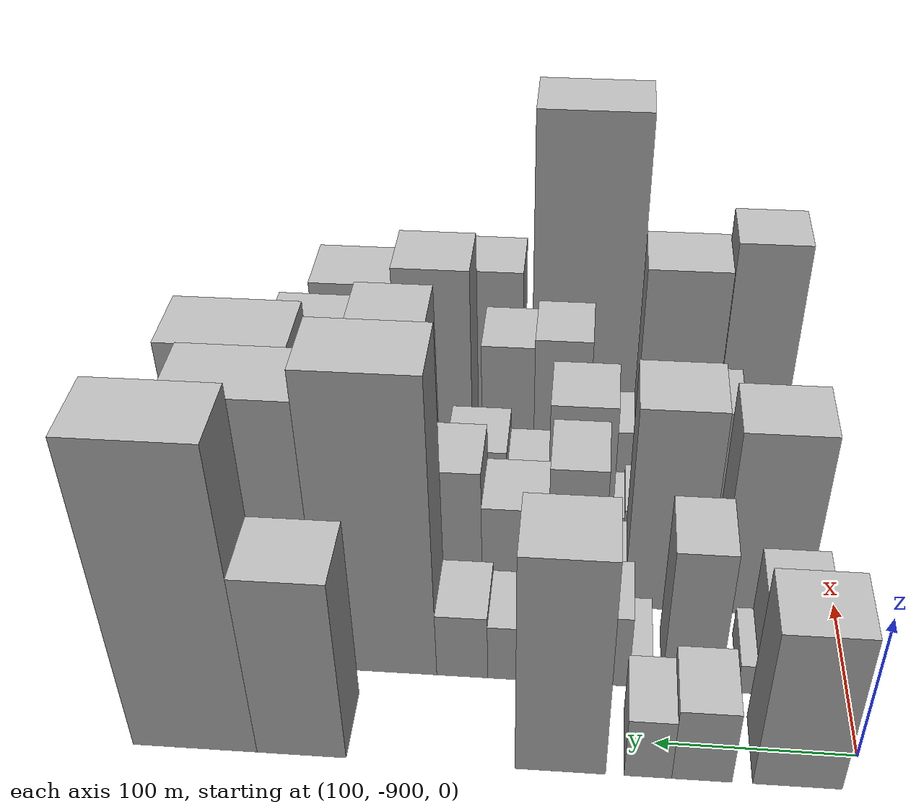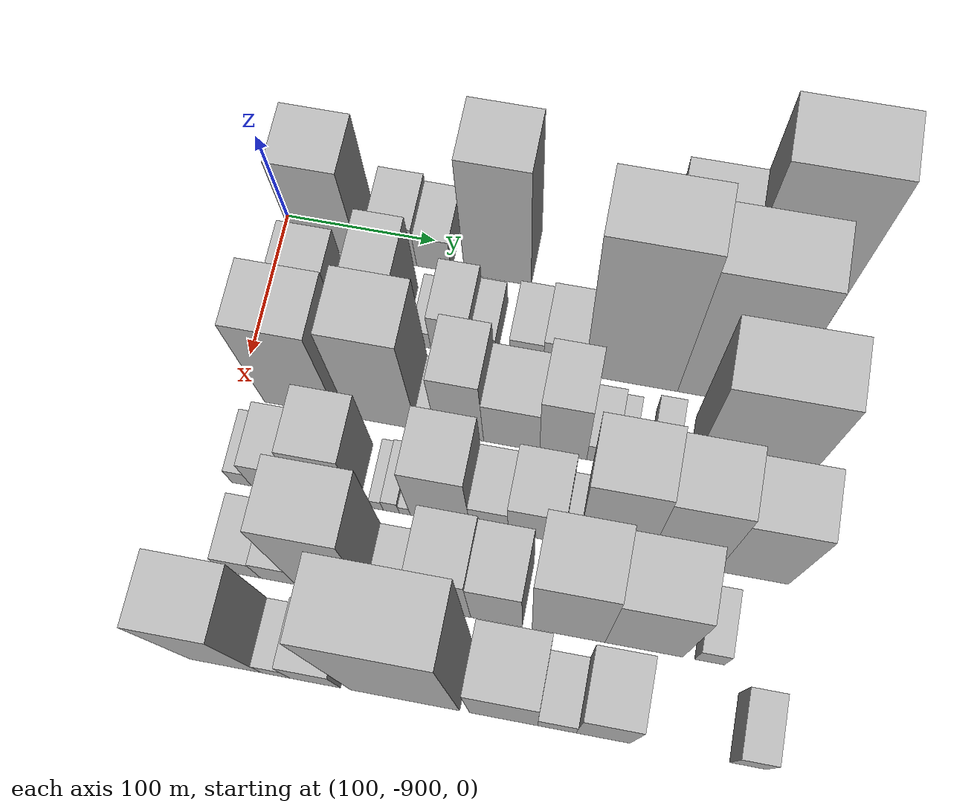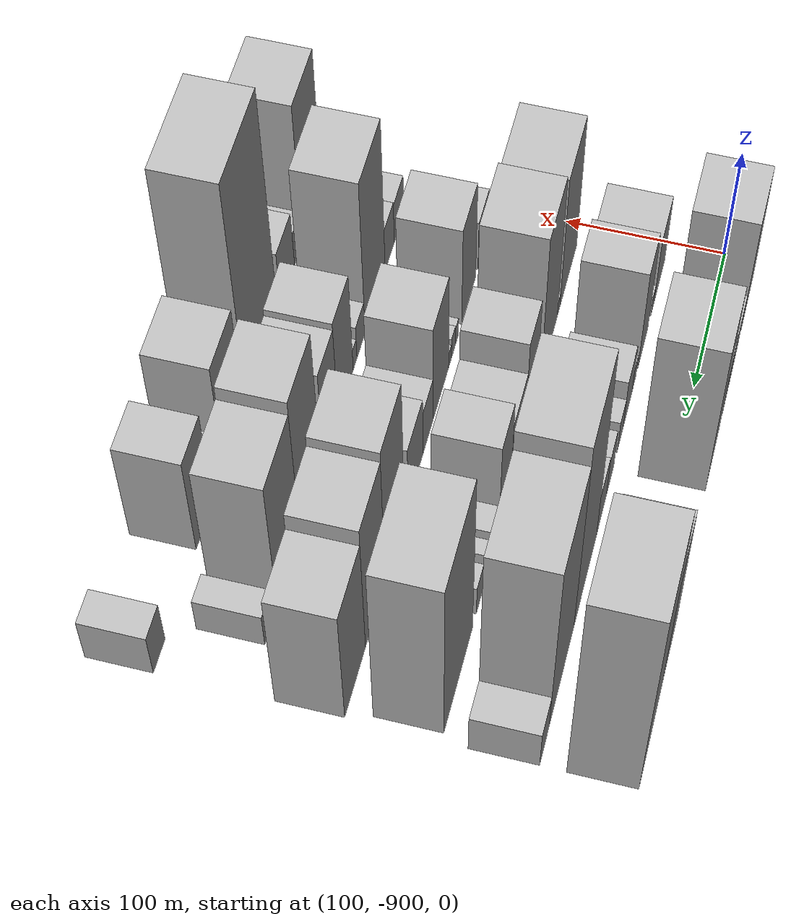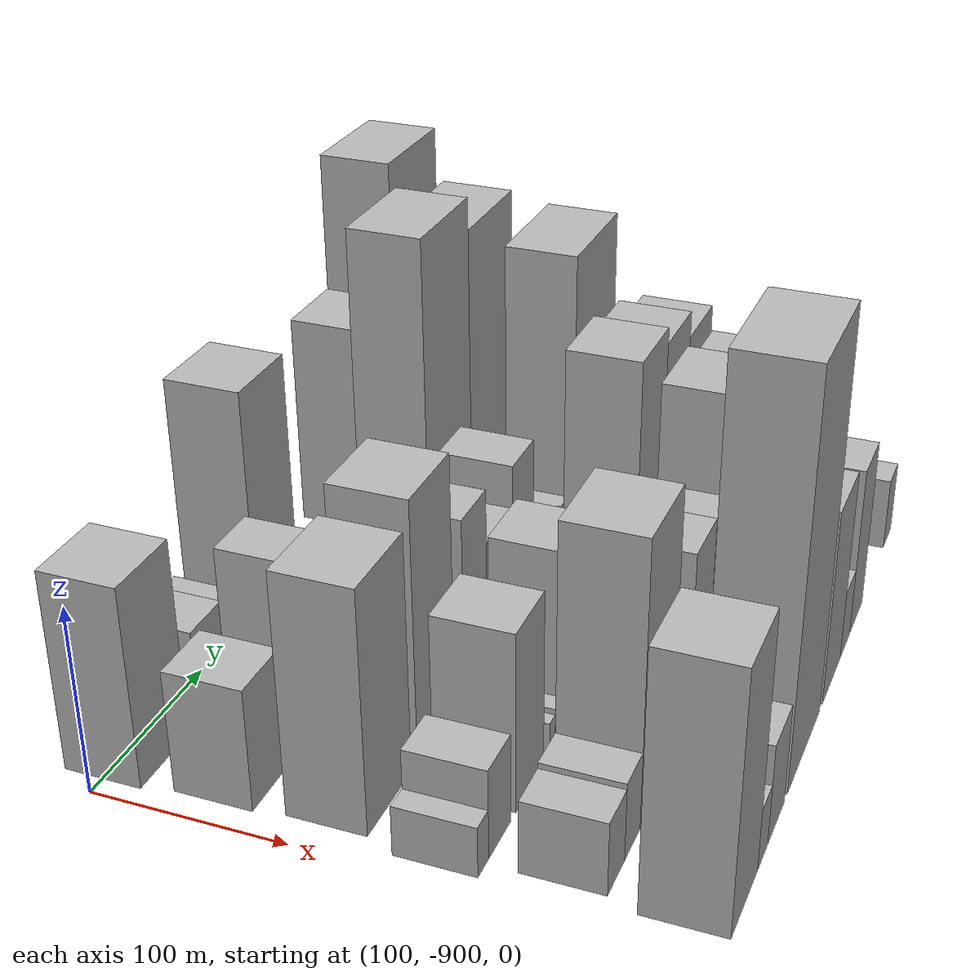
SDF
<sdf version="1.6">
 <world name="default">
  <model name="building_1">
   <static>1</static>
   <pose>100.0000 -868.5117 0 0.000000 0.000000 0.000000</pose>
   <link name="link">
    <pose>0 0 54.00 0 0 0</pose>
    <collision name="collision"><geometry><box><size>40.0000 42.9765 108.0000</size></box></geometry></collision>
    <visual name="visual">
     <cast_shadows>0</cast_shadows>
     <geometry><box><size>40.0000 42.9765 108.0000</size></box></geometry>
     <material>
      <script>
       <uri>model://HANNAS_wall/materials/scripts</uri>
       <uri>model://HANNAS_wall/materials/textures</uri>
       <name>vrc/HANNAS_wall</name>
      </script>
     </material>
    </visual>
   </link>
  </model>
  <model name="building_2">
   <static>1</static>
   <pose>100.0000 -822.4610 0 0.000000 0.000000 0.000000</pose>
   <link name="link">
    <pose>0 0 25.50 0 0 0</pose>
    <collision name="collision"><geometry><box><size>40.0000 29.1250 51.0000</size></box></geometry></collision>
    <visual name="visual">
     <cast_shadows>0</cast_shadows>
     <geometry><box><size>40.0000 29.1250 51.0000</size></box></geometry>
     <material>
      <script>
       <uri>model://HANNAS_wall/materials/scripts</uri>
       <uri>model://HANNAS_wall/materials/textures</uri>
       <name>vrc/HANNAS_wall</name>
      </script>
     </material>
    </visual>
   </link>
  </model>
  <model name="building_3">
   <static>1</static>
   <pose>100.0000 -796.3106 0 0.000000 0.000000 0.000000</pose>
   <link name="link">
    <pose>0 0 21.00 0 0 0</pose>
    <collision name="collision"><geometry><box><size>40.0000 23.1758 42.0000</size></box></geometry></collision>
    <visual name="visual">
     <cast_shadows>0</cast_shadows>
     <geometry><box><size>40.0000 23.1758 42.0000</size></box></geometry>
     <material>
      <script>
       <uri>model://HANNAS_wall/materials/scripts</uri>
       <uri>model://HANNAS_wall/materials/textures</uri>
       <name>vrc/HANNAS_wall</name>
      </script>
     </material>
    </visual>
   </link>
  </model>
  <model name="building_4">
   <static>1</static>
   <pose>100.0000 -753.5888 0 0.000000 0.000000 0.000000</pose>
   <link name="link">
    <pose>0 0 73.50 0 0 0</pose>
    <collision name="collision"><geometry><box><size>40.0000 44.2677 147.0000</size></box></geometry></collision>
    <visual name="visual">
     <cast_shadows>0</cast_shadows>
     <geometry><box><size>40.0000 44.2677 147.0000</size></box></geometry>
     <material>
      <script>
       <uri>model://HANNAS_wall/materials/scripts</uri>
       <uri>model://HANNAS_wall/materials/textures</uri>
       <name>vrc/HANNAS_wall</name>
      </script>
     </material>
    </visual>
   </link>
  </model>
  <model name="building_5">
   <static>1</static>
   <pose>100.0000 -625.5442 0 0.000000 0.000000 0.000000</pose>
   <link name="link">
    <pose>0 0 61.50 0 0 0</pose>
    <collision name="collision"><geometry><box><size>40.0000 44.6072 123.0000</size></box></geometry></collision>
    <visual name="visual">
     <cast_shadows>0</cast_shadows>
     <geometry><box><size>40.0000 44.6072 123.0000</size></box></geometry>
     <material>
      <script>
       <uri>model://HANNAS_wall/materials/scripts</uri>
       <uri>model://HANNAS_wall/materials/textures</uri>
       <name>vrc/HANNAS_wall</name>
      </script>
     </material>
    </visual>
   </link>
  </model>
  <model name="building_6">
   <static>1</static>
   <pose>100.0000 -571.9590 0 0.000000 0.000000 0.000000</pose>
   <link name="link">
    <pose>0 0 100.50 0 0 0</pose>
    <collision name="collision"><geometry><box><size>40.0000 62.5633 201.0000</size></box></geometry></collision>
    <visual name="visual">
     <cast_shadows>0</cast_shadows>
     <geometry><box><size>40.0000 62.5633 201.0000</size></box></geometry>
     <material>
      <script>
       <uri>model://HANNAS_wall/materials/scripts</uri>
       <uri>model://HANNAS_wall/materials/textures</uri>
       <name>vrc/HANNAS_wall</name>
      </script>
     </material>
    </visual>
   </link>
  </model>
  <model name="building_50">
   <static>1</static>
   <pose>155.0000 -868.8638 0 0.000000 0.000000 0.000000</pose>
   <link name="link">
    <pose>0 0 33.00 0 0 0</pose>
    <collision name="collision"><geometry><box><size>40.0000 34.2724 66.0000</size></box></geometry></collision>
    <visual name="visual">
     <cast_shadows>0</cast_shadows>
     <geometry><box><size>40.0000 34.2724 66.0000</size></box></geometry>
     <material>
      <script>
       <uri>model://HANNAS_wall/materials/scripts</uri>
       <uri>model://HANNAS_wall/materials/textures</uri>
       <name>vrc/HANNAS_wall</name>
      </script>
     </material>
    </visual>
   </link>
  </model>
  <model name="building_51">
   <static>1</static>
   <pose>155.0000 -847.3205 0 0.000000 0.000000 0.000000</pose>
   <link name="link">
    <pose>0 0 10.50 0 0 0</pose>
    <collision name="collision"><geometry><box><size>40.0000 8.8141 21.0000</size></box></geometry></collision>
    <visual name="visual">
     <cast_shadows>0</cast_shadows>
     <geometry><box><size>40.0000 8.8141 21.0000</size></box></geometry>
     <material>
      <script>
       <uri>model://HANNAS_wall/materials/scripts</uri>
       <uri>model://HANNAS_wall/materials/textures</uri>
       <name>vrc/HANNAS_wall</name>
      </script>
     </material>
    </visual>
   </link>
  </model>
  <model name="building_52">
   <static>1</static>
   <pose>155.0000 -818.9141 0 0.000000 0.000000 0.000000</pose>
   <link name="link">
    <pose>0 0 49.50 0 0 0</pose>
    <collision name="collision"><geometry><box><size>40.0000 29.9987 99.0000</size></box></geometry></collision>
    <visual name="visual">
     <cast_shadows>0</cast_shadows>
     <geometry><box><size>40.0000 29.9987 99.0000</size></box></geometry>
     <material>
      <script>
       <uri>model://HANNAS_wall/materials/scripts</uri>
       <uri>model://HANNAS_wall/materials/textures</uri>
       <name>vrc/HANNAS_wall</name>
      </script>
     </material>
    </visual>
   </link>
  </model>
  <model name="building_53">
   <static>1</static>
   <pose>155.0000 -792.4140 0 0.000000 0.000000 0.000000</pose>
   <link name="link">
    <pose>0 0 12.00 0 0 0</pose>
    <collision name="collision"><geometry><box><size>40.0000 11.0015 24.0000</size></box></geometry></collision>
    <visual name="visual">
     <cast_shadows>0</cast_shadows>
     <geometry><box><size>40.0000 11.0015 24.0000</size></box></geometry>
     <material>
      <script>
       <uri>model://HANNAS_wall/materials/scripts</uri>
       <uri>model://HANNAS_wall/materials/textures</uri>
       <name>vrc/HANNAS_wall</name>
      </script>
     </material>
    </visual>
   </link>
  </model>
  <model name="building_54">
   <static>1</static>
   <pose>155.0000 -773.8218 0 0.000000 0.000000 0.000000</pose>
   <link name="link">
    <pose>0 0 25.50 0 0 0</pose>
    <collision name="collision"><geometry><box><size>40.0000 26.1829 51.0000</size></box></geometry></collision>
    <visual name="visual">
     <cast_shadows>0</cast_shadows>
     <geometry><box><size>40.0000 26.1829 51.0000</size></box></geometry>
     <material>
      <script>
       <uri>model://HANNAS_wall/materials/scripts</uri>
       <uri>model://HANNAS_wall/materials/textures</uri>
       <name>vrc/HANNAS_wall</name>
      </script>
     </material>
    </visual>
   </link>
  </model>
  <model name="building_55">
   <static>1</static>
   <pose>155.0000 -752.4143 0 0.000000 0.000000 0.000000</pose>
   <link name="link">
    <pose>0 0 16.50 0 0 0</pose>
    <collision name="collision"><geometry><box><size>40.0000 16.6319 33.0000</size></box></geometry></collision>
    <visual name="visual">
     <cast_shadows>0</cast_shadows>
     <geometry><box><size>40.0000 16.6319 33.0000</size></box></geometry>
     <material>
      <script>
       <uri>model://HANNAS_wall/materials/scripts</uri>
       <uri>model://HANNAS_wall/materials/textures</uri>
       <name>vrc/HANNAS_wall</name>
      </script>
     </material>
    </visual>
   </link>
  </model>
  <model name="building_56">
   <static>1</static>
   <pose>155.0000 -724.2206 0 0.000000 0.000000 0.000000</pose>
   <link name="link">
    <pose>0 0 19.50 0 0 0</pose>
    <collision name="collision"><geometry><box><size>40.0000 21.7556 39.0000</size></box></geometry></collision>
    <visual name="visual">
     <cast_shadows>0</cast_shadows>
     <geometry><box><size>40.0000 21.7556 39.0000</size></box></geometry>
     <material>
      <script>
       <uri>model://HANNAS_wall/materials/scripts</uri>
       <uri>model://HANNAS_wall/materials/textures</uri>
       <name>vrc/HANNAS_wall</name>
      </script>
     </material>
    </visual>
   </link>
  </model>
  <model name="building_57">
   <static>1</static>
   <pose>155.0000 -699.9777 0 0.000000 0.000000 0.000000</pose>
   <link name="link">
    <pose>0 0 22.50 0 0 0</pose>
    <collision name="collision"><geometry><box><size>40.0000 26.7302 45.0000</size></box></geometry></collision>
    <visual name="visual">
     <cast_shadows>0</cast_shadows>
     <geometry><box><size>40.0000 26.7302 45.0000</size></box></geometry>
     <material>
      <script>
       <uri>model://HANNAS_wall/materials/scripts</uri>
       <uri>model://HANNAS_wall/materials/textures</uri>
       <name>vrc/HANNAS_wall</name>
      </script>
     </material>
    </visual>
   </link>
  </model>
  <model name="building_58">
   <static>1</static>
   <pose>155.0000 -656.6548 0 0.000000 0.000000 0.000000</pose>
   <link name="link">
    <pose>0 0 99.00 0 0 0</pose>
    <collision name="collision"><geometry><box><size>40.0000 59.9157 198.0000</size></box></geometry></collision>
    <visual name="visual">
     <cast_shadows>0</cast_shadows>
     <geometry><box><size>40.0000 59.9157 198.0000</size></box></geometry>
     <material>
      <script>
       <uri>model://HANNAS_wall/materials/scripts</uri>
       <uri>model://HANNAS_wall/materials/textures</uri>
       <name>vrc/HANNAS_wall</name>
      </script>
     </material>
    </visual>
   </link>
  </model>
  <model name="building_59">
   <static>1</static>
   <pose>155.0000 -595.4142 0 0.000000 0.000000 0.000000</pose>
   <link name="link">
    <pose>0 0 90.00 0 0 0</pose>
    <collision name="collision"><geometry><box><size>40.0000 62.5655 180.0000</size></box></geometry></collision>
    <visual name="visual">
     <cast_shadows>0</cast_shadows>
     <geometry><box><size>40.0000 62.5655 180.0000</size></box></geometry>
     <material>
      <script>
       <uri>model://HANNAS_wall/materials/scripts</uri>
       <uri>model://HANNAS_wall/materials/textures</uri>
       <name>vrc/HANNAS_wall</name>
      </script>
     </material>
    </visual>
   </link>
  </model>
  <model name="building_60">
   <static>1</static>
   <pose>155.0000 -552.5493 0 0.000000 0.000000 0.000000</pose>
   <link name="link">
    <pose>0 0 19.50 0 0 0</pose>
    <collision name="collision"><geometry><box><size>40.0000 23.1642 39.0000</size></box></geometry></collision>
    <visual name="visual">
     <cast_shadows>0</cast_shadows>
     <geometry><box><size>40.0000 23.1642 39.0000</size></box></geometry>
     <material>
      <script>
       <uri>model://HANNAS_wall/materials/scripts</uri>
       <uri>model://HANNAS_wall/materials/textures</uri>
       <name>vrc/HANNAS_wall</name>
      </script>
     </material>
    </visual>
   </link>
  </model>
  <model name="building_98">
   <static>1</static>
   <pose>210.0000 -859.2843 0 0.000000 0.000000 0.000000</pose>
   <link name="link">
    <pose>0 0 64.50 0 0 0</pose>
    <collision name="collision"><geometry><box><size>40.0000 47.4315 129.0000</size></box></geometry></collision>
    <visual name="visual">
     <cast_shadows>0</cast_shadows>
     <geometry><box><size>40.0000 47.4315 129.0000</size></box></geometry>
     <material>
      <script>
       <uri>model://HANNAS_wall/materials/scripts</uri>
       <uri>model://HANNAS_wall/materials/textures</uri>
       <name>vrc/HANNAS_wall</name>
      </script>
     </material>
    </visual>
   </link>
  </model>
  <model name="building_99">
   <static>1</static>
   <pose>210.0000 -832.0508 0 0.000000 0.000000 0.000000</pose>
   <link name="link">
    <pose>0 0 7.50 0 0 0</pose>
    <collision name="collision"><geometry><box><size>40.0000 7.0354 15.0000</size></box></geometry></collision>
    <visual name="visual">
     <cast_shadows>0</cast_shadows>
     <geometry><box><size>40.0000 7.0354 15.0000</size></box></geometry>
     <material>
      <script>
       <uri>model://HANNAS_wall/materials/scripts</uri>
       <uri>model://HANNAS_wall/materials/textures</uri>
       <name>vrc/HANNAS_wall</name>
      </script>
     </material>
    </visual>
   </link>
  </model>
  <model name="building_100">
   <static>1</static>
   <pose>210.0000 -806.3421 0 0.000000 0.000000 0.000000</pose>
   <link name="link">
    <pose>0 0 70.50 0 0 0</pose>
    <collision name="collision"><geometry><box><size>40.0000 44.3821 141.0000</size></box></geometry></collision>
    <visual name="visual">
     <cast_shadows>0</cast_shadows>
     <geometry><box><size>40.0000 44.3821 141.0000</size></box></geometry>
     <material>
      <script>
       <uri>model://HANNAS_wall/materials/scripts</uri>
       <uri>model://HANNAS_wall/materials/textures</uri>
       <name>vrc/HANNAS_wall</name>
      </script>
     </material>
    </visual>
   </link>
  </model>
  <model name="building_101">
   <static>1</static>
   <pose>210.0000 -778.0609 0 0.000000 0.000000 0.000000</pose>
   <link name="link">
    <pose>0 0 13.50 0 0 0</pose>
    <collision name="collision"><geometry><box><size>40.0000 12.1802 27.0000</size></box></geometry></collision>
    <visual name="visual">
     <cast_shadows>0</cast_shadows>
     <geometry><box><size>40.0000 12.1802 27.0000</size></box></geometry>
     <material>
      <script>
       <uri>model://HANNAS_wall/materials/scripts</uri>
       <uri>model://HANNAS_wall/materials/textures</uri>
       <name>vrc/HANNAS_wall</name>
      </script>
     </material>
    </visual>
   </link>
  </model>
  <model name="building_102">
   <static>1</static>
   <pose>210.0000 -756.7294 0 0.000000 0.000000 0.000000</pose>
   <link name="link">
    <pose>0 0 49.50 0 0 0</pose>
    <collision name="collision"><geometry><box><size>40.0000 30.4828 99.0000</size></box></geometry></collision>
    <visual name="visual">
     <cast_shadows>0</cast_shadows>
     <geometry><box><size>40.0000 30.4828 99.0000</size></box></geometry>
     <material>
      <script>
       <uri>model://HANNAS_wall/materials/scripts</uri>
       <uri>model://HANNAS_wall/materials/textures</uri>
       <name>vrc/HANNAS_wall</name>
      </script>
     </material>
    </visual>
   </link>
  </model>
  <model name="building_103">
   <static>1</static>
   <pose>210.0000 -723.6120 0 0.000000 0.000000 0.000000</pose>
   <link name="link">
    <pose>0 0 34.50 0 0 0</pose>
    <collision name="collision"><geometry><box><size>40.0000 35.7521 69.0000</size></box></geometry></collision>
    <visual name="visual">
     <cast_shadows>0</cast_shadows>
     <geometry><box><size>40.0000 35.7521 69.0000</size></box></geometry>
     <material>
      <script>
       <uri>model://HANNAS_wall/materials/scripts</uri>
       <uri>model://HANNAS_wall/materials/textures</uri>
       <name>vrc/HANNAS_wall</name>
      </script>
     </material>
    </visual>
   </link>
  </model>
  <model name="building_104">
   <static>1</static>
   <pose>210.0000 -690.8043 0 0.000000 0.000000 0.000000</pose>
   <link name="link">
    <pose>0 0 46.50 0 0 0</pose>
    <collision name="collision"><geometry><box><size>40.0000 29.8632 93.0000</size></box></geometry></collision>
    <visual name="visual">
     <cast_shadows>0</cast_shadows>
     <geometry><box><size>40.0000 29.8632 93.0000</size></box></geometry>
     <material>
      <script>
       <uri>model://HANNAS_wall/materials/scripts</uri>
       <uri>model://HANNAS_wall/materials/textures</uri>
       <name>vrc/HANNAS_wall</name>
      </script>
     </material>
    </visual>
   </link>
  </model>
  <model name="building_105">
   <static>1</static>
   <pose>210.0000 -667.0021 0 0.000000 0.000000 0.000000</pose>
   <link name="link">
    <pose>0 0 15.00 0 0 0</pose>
    <collision name="collision"><geometry><box><size>40.0000 17.7413 30.0000</size></box></geometry></collision>
    <visual name="visual">
     <cast_shadows>0</cast_shadows>
     <geometry><box><size>40.0000 17.7413 30.0000</size></box></geometry>
     <material>
      <script>
       <uri>model://HANNAS_wall/materials/scripts</uri>
       <uri>model://HANNAS_wall/materials/textures</uri>
       <name>vrc/HANNAS_wall</name>
      </script>
     </material>
    </visual>
   </link>
  </model>
  <model name="building_106">
   <static>1</static>
   <pose>210.0000 -652.9344 0 0.000000 0.000000 0.000000</pose>
   <link name="link">
    <pose>0 0 10.50 0 0 0</pose>
    <collision name="collision"><geometry><box><size>40.0000 10.3941 21.0000</size></box></geometry></collision>
    <visual name="visual">
     <cast_shadows>0</cast_shadows>
     <geometry><box><size>40.0000 10.3941 21.0000</size></box></geometry>
     <material>
      <script>
       <uri>model://HANNAS_wall/materials/scripts</uri>
       <uri>model://HANNAS_wall/materials/textures</uri>
       <name>vrc/HANNAS_wall</name>
      </script>
     </material>
    </visual>
   </link>
  </model>
  <model name="building_107">
   <static>1</static>
   <pose>210.0000 -629.5931 0 0.000000 0.000000 0.000000</pose>
   <link name="link">
    <pose>0 0 15.00 0 0 0</pose>
    <collision name="collision"><geometry><box><size>40.0000 16.2885 30.0000</size></box></geometry></collision>
    <visual name="visual">
     <cast_shadows>0</cast_shadows>
     <geometry><box><size>40.0000 16.2885 30.0000</size></box></geometry>
     <material>
      <script>
       <uri>model://HANNAS_wall/materials/scripts</uri>
       <uri>model://HANNAS_wall/materials/textures</uri>
       <name>vrc/HANNAS_wall</name>
      </script>
     </material>
    </visual>
   </link>
  </model>
  <model name="building_108">
   <static>1</static>
   <pose>210.0000 -579.5059 0 0.000000 0.000000 0.000000</pose>
   <link name="link">
    <pose>0 0 84.00 0 0 0</pose>
    <collision name="collision"><geometry><box><size>40.0000 65.8859 168.0000</size></box></geometry></collision>
    <visual name="visual">
     <cast_shadows>0</cast_shadows>
     <geometry><box><size>40.0000 65.8859 168.0000</size></box></geometry>
     <material>
      <script>
       <uri>model://HANNAS_wall/materials/scripts</uri>
       <uri>model://HANNAS_wall/materials/textures</uri>
       <name>vrc/HANNAS_wall</name>
      </script>
     </material>
    </visual>
   </link>
  </model>
  <model name="building_152">
   <static>1</static>
   <pose>265.0000 -883.7760 0 0.000000 0.000000 0.000000</pose>
   <link name="link">
    <pose>0 0 13.50 0 0 0</pose>
    <collision name="collision"><geometry><box><size>40.0000 12.4480 27.0000</size></box></geometry></collision>
    <visual name="visual">
     <cast_shadows>0</cast_shadows>
     <geometry><box><size>40.0000 12.4480 27.0000</size></box></geometry>
     <material>
      <script>
       <uri>model://HANNAS_wall/materials/scripts</uri>
       <uri>model://HANNAS_wall/materials/textures</uri>
       <name>vrc/HANNAS_wall</name>
      </script>
     </material>
    </visual>
   </link>
  </model>
  <model name="building_153">
   <static>1</static>
   <pose>265.0000 -864.2148 0 0.000000 0.000000 0.000000</pose>
   <link name="link">
    <pose>0 0 24.00 0 0 0</pose>
    <collision name="collision"><geometry><box><size>40.0000 26.6745 48.0000</size></box></geometry></collision>
    <visual name="visual">
     <cast_shadows>0</cast_shadows>
     <geometry><box><size>40.0000 26.6745 48.0000</size></box></geometry>
     <material>
      <script>
       <uri>model://HANNAS_wall/materials/scripts</uri>
       <uri>model://HANNAS_wall/materials/textures</uri>
       <name>vrc/HANNAS_wall</name>
      </script>
     </material>
    </visual>
   </link>
  </model>
  <model name="building_154">
   <static>1</static>
   <pose>265.0000 -827.1013 0 0.000000 0.000000 0.000000</pose>
   <link name="link">
    <pose>0 0 48.00 0 0 0</pose>
    <collision name="collision"><geometry><box><size>40.0000 35.5524 96.0000</size></box></geometry></collision>
    <visual name="visual">
     <cast_shadows>0</cast_shadows>
     <geometry><box><size>40.0000 35.5524 96.0000</size></box></geometry>
     <material>
      <script>
       <uri>model://HANNAS_wall/materials/scripts</uri>
       <uri>model://HANNAS_wall/materials/textures</uri>
       <name>vrc/HANNAS_wall</name>
      </script>
     </material>
    </visual>
   </link>
  </model>
  <model name="building_155">
   <static>1</static>
   <pose>265.0000 -797.5120 0 0.000000 0.000000 0.000000</pose>
   <link name="link">
    <pose>0 0 9.00 0 0 0</pose>
    <collision name="collision"><geometry><box><size>40.0000 7.6262 18.0000</size></box></geometry></collision>
    <visual name="visual">
     <cast_shadows>0</cast_shadows>
     <geometry><box><size>40.0000 7.6262 18.0000</size></box></geometry>
     <material>
      <script>
       <uri>model://HANNAS_wall/materials/scripts</uri>
       <uri>model://HANNAS_wall/materials/textures</uri>
       <name>vrc/HANNAS_wall</name>
      </script>
     </material>
    </visual>
   </link>
  </model>
  <model name="building_156">
   <static>1</static>
   <pose>265.0000 -788.6619 0 0.000000 0.000000 0.000000</pose>
   <link name="link">
    <pose>0 0 10.50 0 0 0</pose>
    <collision name="collision"><geometry><box><size>40.0000 10.0740 21.0000</size></box></geometry></collision>
    <visual name="visual">
     <cast_shadows>0</cast_shadows>
     <geometry><box><size>40.0000 10.0740 21.0000</size></box></geometry>
     <material>
      <script>
       <uri>model://HANNAS_wall/materials/scripts</uri>
       <uri>model://HANNAS_wall/materials/textures</uri>
       <name>vrc/HANNAS_wall</name>
      </script>
     </material>
    </visual>
   </link>
  </model>
  <model name="building_157">
   <static>1</static>
   <pose>265.0000 -780.1445 0 0.000000 0.000000 0.000000</pose>
   <link name="link">
    <pose>0 0 7.50 0 0 0</pose>
    <collision name="collision"><geometry><box><size>40.0000 6.9607 15.0000</size></box></geometry></collision>
    <visual name="visual">
     <cast_shadows>0</cast_shadows>
     <geometry><box><size>40.0000 6.9607 15.0000</size></box></geometry>
     <material>
      <script>
       <uri>model://HANNAS_wall/materials/scripts</uri>
       <uri>model://HANNAS_wall/materials/textures</uri>
       <name>vrc/HANNAS_wall</name>
      </script>
     </material>
    </visual>
   </link>
  </model>
  <model name="building_158">
   <static>1</static>
   <pose>265.0000 -757.9354 0 0.000000 0.000000 0.000000</pose>
   <link name="link">
    <pose>0 0 48.00 0 0 0</pose>
    <collision name="collision"><geometry><box><size>40.0000 37.4575 96.0000</size></box></geometry></collision>
    <visual name="visual">
     <cast_shadows>0</cast_shadows>
     <geometry><box><size>40.0000 37.4575 96.0000</size></box></geometry>
     <material>
      <script>
       <uri>model://HANNAS_wall/materials/scripts</uri>
       <uri>model://HANNAS_wall/materials/textures</uri>
       <name>vrc/HANNAS_wall</name>
      </script>
     </material>
    </visual>
   </link>
  </model>
  <model name="building_159">
   <static>1</static>
   <pose>265.0000 -727.1707 0 0.000000 0.000000 0.000000</pose>
   <link name="link">
    <pose>0 0 22.50 0 0 0</pose>
    <collision name="collision"><geometry><box><size>40.0000 24.0719 45.0000</size></box></geometry></collision>
    <visual name="visual">
     <cast_shadows>0</cast_shadows>
     <geometry><box><size>40.0000 24.0719 45.0000</size></box></geometry>
     <material>
      <script>
       <uri>model://HANNAS_wall/materials/scripts</uri>
       <uri>model://HANNAS_wall/materials/textures</uri>
       <name>vrc/HANNAS_wall</name>
      </script>
     </material>
    </visual>
   </link>
  </model>
  <model name="building_160">
   <static>1</static>
   <pose>265.0000 -697.9531 0 0.000000 0.000000 0.000000</pose>
   <link name="link">
    <pose>0 0 30.00 0 0 0</pose>
    <collision name="collision"><geometry><box><size>40.0000 34.3633 60.0000</size></box></geometry></collision>
    <visual name="visual">
     <cast_shadows>0</cast_shadows>
     <geometry><box><size>40.0000 34.3633 60.0000</size></box></geometry>
     <material>
      <script>
       <uri>model://HANNAS_wall/materials/scripts</uri>
       <uri>model://HANNAS_wall/materials/textures</uri>
       <name>vrc/HANNAS_wall</name>
      </script>
     </material>
    </visual>
   </link>
  </model>
  <model name="building_161">
   <static>1</static>
   <pose>265.0000 -676.2450 0 0.000000 0.000000 0.000000</pose>
   <link name="link">
    <pose>0 0 10.50 0 0 0</pose>
    <collision name="collision"><geometry><box><size>40.0000 9.0530 21.0000</size></box></geometry></collision>
    <visual name="visual">
     <cast_shadows>0</cast_shadows>
     <geometry><box><size>40.0000 9.0530 21.0000</size></box></geometry>
     <material>
      <script>
       <uri>model://HANNAS_wall/materials/scripts</uri>
       <uri>model://HANNAS_wall/materials/textures</uri>
       <name>vrc/HANNAS_wall</name>
      </script>
     </material>
    </visual>
   </link>
  </model>
  <model name="building_162">
   <static>1</static>
   <pose>265.0000 -650.0690 0 0.000000 0.000000 0.000000</pose>
   <link name="link">
    <pose>0 0 72.00 0 0 0</pose>
    <collision name="collision"><geometry><box><size>40.0000 43.2990 144.0000</size></box></geometry></collision>
    <visual name="visual">
     <cast_shadows>0</cast_shadows>
     <geometry><box><size>40.0000 43.2990 144.0000</size></box></geometry>
     <material>
      <script>
       <uri>model://HANNAS_wall/materials/scripts</uri>
       <uri>model://HANNAS_wall/materials/textures</uri>
       <name>vrc/HANNAS_wall</name>
      </script>
     </material>
    </visual>
   </link>
  </model>
  <model name="building_163">
   <static>1</static>
   <pose>265.0000 -607.2280 0 0.000000 0.000000 0.000000</pose>
   <link name="link">
    <pose>0 0 67.50 0 0 0</pose>
    <collision name="collision"><geometry><box><size>40.0000 42.3830 135.0000</size></box></geometry></collision>
    <visual name="visual">
     <cast_shadows>0</cast_shadows>
     <geometry><box><size>40.0000 42.3830 135.0000</size></box></geometry>
     <material>
      <script>
       <uri>model://HANNAS_wall/materials/scripts</uri>
       <uri>model://HANNAS_wall/materials/textures</uri>
       <name>vrc/HANNAS_wall</name>
      </script>
     </material>
    </visual>
   </link>
  </model>
  <model name="building_164">
   <static>1</static>
   <pose>265.0000 -564.1319 0 0.000000 0.000000 0.000000</pose>
   <link name="link">
    <pose>0 0 60.00 0 0 0</pose>
    <collision name="collision"><geometry><box><size>40.0000 43.8092 120.0000</size></box></geometry></collision>
    <visual name="visual">
     <cast_shadows>0</cast_shadows>
     <geometry><box><size>40.0000 43.8092 120.0000</size></box></geometry>
     <material>
      <script>
       <uri>model://HANNAS_wall/materials/scripts</uri>
       <uri>model://HANNAS_wall/materials/textures</uri>
       <name>vrc/HANNAS_wall</name>
      </script>
     </material>
    </visual>
   </link>
  </model>
  <model name="building_202">
   <static>1</static>
   <pose>320.0000 -869.3851 0 0.000000 0.000000 0.000000</pose>
   <link name="link">
    <pose>0 0 19.50 0 0 0</pose>
    <collision name="collision"><geometry><box><size>40.0000 23.2298 39.0000</size></box></geometry></collision>
    <visual name="visual">
     <cast_shadows>0</cast_shadows>
     <geometry><box><size>40.0000 23.2298 39.0000</size></box></geometry>
     <material>
      <script>
       <uri>model://HANNAS_wall/materials/scripts</uri>
       <uri>model://HANNAS_wall/materials/textures</uri>
       <name>vrc/HANNAS_wall</name>
      </script>
     </material>
    </visual>
   </link>
  </model>
  <model name="building_203">
   <static>1</static>
   <pose>320.0000 -846.7532 0 0.000000 0.000000 0.000000</pose>
   <link name="link">
    <pose>0 0 21.00 0 0 0</pose>
    <collision name="collision"><geometry><box><size>40.0000 22.0339 42.0000</size></box></geometry></collision>
    <visual name="visual">
     <cast_shadows>0</cast_shadows>
     <geometry><box><size>40.0000 22.0339 42.0000</size></box></geometry>
     <material>
      <script>
       <uri>model://HANNAS_wall/materials/scripts</uri>
       <uri>model://HANNAS_wall/materials/textures</uri>
       <name>vrc/HANNAS_wall</name>
      </script>
     </material>
    </visual>
   </link>
  </model>
  <model name="building_204">
   <static>1</static>
   <pose>320.0000 -812.1635 0 0.000000 0.000000 0.000000</pose>
   <link name="link">
    <pose>0 0 75.00 0 0 0</pose>
    <collision name="collision"><geometry><box><size>40.0000 47.1456 150.0000</size></box></geometry></collision>
    <visual name="visual">
     <cast_shadows>0</cast_shadows>
     <geometry><box><size>40.0000 47.1456 150.0000</size></box></geometry>
     <material>
      <script>
       <uri>model://HANNAS_wall/materials/scripts</uri>
       <uri>model://HANNAS_wall/materials/textures</uri>
       <name>vrc/HANNAS_wall</name>
      </script>
     </material>
    </visual>
   </link>
  </model>
  <model name="building_205">
   <static>1</static>
   <pose>320.0000 -779.2157 0 0.000000 0.000000 0.000000</pose>
   <link name="link">
    <pose>0 0 16.50 0 0 0</pose>
    <collision name="collision"><geometry><box><size>40.0000 18.7501 33.0000</size></box></geometry></collision>
    <visual name="visual">
     <cast_shadows>0</cast_shadows>
     <geometry><box><size>40.0000 18.7501 33.0000</size></box></geometry>
     <material>
      <script>
       <uri>model://HANNAS_wall/materials/scripts</uri>
       <uri>model://HANNAS_wall/materials/textures</uri>
       <name>vrc/HANNAS_wall</name>
      </script>
     </material>
    </visual>
   </link>
  </model>
  <model name="building_206">
   <static>1</static>
   <pose>320.0000 -765.5371 0 0.000000 0.000000 0.000000</pose>
   <link name="link">
    <pose>0 0 10.50 0 0 0</pose>
    <collision name="collision"><geometry><box><size>40.0000 8.6071 21.0000</size></box></geometry></collision>
    <visual name="visual">
     <cast_shadows>0</cast_shadows>
     <geometry><box><size>40.0000 8.6071 21.0000</size></box></geometry>
     <material>
      <script>
       <uri>model://HANNAS_wall/materials/scripts</uri>
       <uri>model://HANNAS_wall/materials/textures</uri>
       <name>vrc/HANNAS_wall</name>
      </script>
     </material>
    </visual>
   </link>
  </model>
  <model name="building_207">
   <static>1</static>
   <pose>320.0000 -744.4533 0 0.000000 0.000000 0.000000</pose>
   <link name="link">
    <pose>0 0 49.50 0 0 0</pose>
    <collision name="collision"><geometry><box><size>40.0000 33.5604 99.0000</size></box></geometry></collision>
    <visual name="visual">
     <cast_shadows>0</cast_shadows>
     <geometry><box><size>40.0000 33.5604 99.0000</size></box></geometry>
     <material>
      <script>
       <uri>model://HANNAS_wall/materials/scripts</uri>
       <uri>model://HANNAS_wall/materials/textures</uri>
       <name>vrc/HANNAS_wall</name>
      </script>
     </material>
    </visual>
   </link>
  </model>
  <model name="building_208">
   <static>1</static>
   <pose>320.0000 -711.9734 0 0.000000 0.000000 0.000000</pose>
   <link name="link">
    <pose>0 0 46.50 0 0 0</pose>
    <collision name="collision"><geometry><box><size>40.0000 31.3993 93.0000</size></box></geometry></collision>
    <visual name="visual">
     <cast_shadows>0</cast_shadows>
     <geometry><box><size>40.0000 31.3993 93.0000</size></box></geometry>
     <material>
      <script>
       <uri>model://HANNAS_wall/materials/scripts</uri>
       <uri>model://HANNAS_wall/materials/textures</uri>
       <name>vrc/HANNAS_wall</name>
      </script>
     </material>
    </visual>
   </link>
  </model>
  <model name="building_209">
   <static>1</static>
   <pose>320.0000 -668.0973 0 0.000000 0.000000 0.000000</pose>
   <link name="link">
    <pose>0 0 72.00 0 0 0</pose>
    <collision name="collision"><geometry><box><size>40.0000 44.3530 144.0000</size></box></geometry></collision>
    <visual name="visual">
     <cast_shadows>0</cast_shadows>
     <geometry><box><size>40.0000 44.3530 144.0000</size></box></geometry>
     <material>
      <script>
       <uri>model://HANNAS_wall/materials/scripts</uri>
       <uri>model://HANNAS_wall/materials/textures</uri>
       <name>vrc/HANNAS_wall</name>
      </script>
     </material>
    </visual>
   </link>
  </model>
  <model name="building_210">
   <static>1</static>
   <pose>320.0000 -622.3836 0 0.000000 0.000000 0.000000</pose>
   <link name="link">
    <pose>0 0 66.00 0 0 0</pose>
    <collision name="collision"><geometry><box><size>40.0000 47.0743 132.0000</size></box></geometry></collision>
    <visual name="visual">
     <cast_shadows>0</cast_shadows>
     <geometry><box><size>40.0000 47.0743 132.0000</size></box></geometry>
     <material>
      <script>
       <uri>model://HANNAS_wall/materials/scripts</uri>
       <uri>model://HANNAS_wall/materials/textures</uri>
       <name>vrc/HANNAS_wall</name>
      </script>
     </material>
    </visual>
   </link>
  </model>
  <model name="building_211">
   <static>1</static>
   <pose>320.0000 -582.8239 0 0.000000 0.000000 0.000000</pose>
   <link name="link">
    <pose>0 0 16.50 0 0 0</pose>
    <collision name="collision"><geometry><box><size>40.0000 18.0450 33.0000</size></box></geometry></collision>
    <visual name="visual">
     <cast_shadows>0</cast_shadows>
     <geometry><box><size>40.0000 18.0450 33.0000</size></box></geometry>
     <material>
      <script>
       <uri>model://HANNAS_wall/materials/scripts</uri>
       <uri>model://HANNAS_wall/materials/textures</uri>
       <name>vrc/HANNAS_wall</name>
      </script>
     </material>
    </visual>
   </link>
  </model>
  <model name="building_251">
   <static>1</static>
   <pose>375.0000 -865.1677 0 0.000000 0.000000 0.000000</pose>
   <link name="link">
    <pose>0 0 67.50 0 0 0</pose>
    <collision name="collision"><geometry><box><size>40.0000 43.6647 135.0000</size></box></geometry></collision>
    <visual name="visual">
     <cast_shadows>0</cast_shadows>
     <geometry><box><size>40.0000 43.6647 135.0000</size></box></geometry>
     <material>
      <script>
       <uri>model://HANNAS_wall/materials/scripts</uri>
       <uri>model://HANNAS_wall/materials/textures</uri>
       <name>vrc/HANNAS_wall</name>
      </script>
     </material>
    </visual>
   </link>
  </model>
  <model name="building_252">
   <static>1</static>
   <pose>375.0000 -834.6054 0 0.000000 0.000000 0.000000</pose>
   <link name="link">
    <pose>0 0 16.50 0 0 0</pose>
    <collision name="collision"><geometry><box><size>40.0000 17.4599 33.0000</size></box></geometry></collision>
    <visual name="visual">
     <cast_shadows>0</cast_shadows>
     <geometry><box><size>40.0000 17.4599 33.0000</size></box></geometry>
     <material>
      <script>
       <uri>model://HANNAS_wall/materials/scripts</uri>
       <uri>model://HANNAS_wall/materials/textures</uri>
       <name>vrc/HANNAS_wall</name>
      </script>
     </material>
    </visual>
   </link>
  </model>
  <model name="building_253">
   <static>1</static>
   <pose>375.0000 -810.5280 0 0.000000 0.000000 0.000000</pose>
   <link name="link">
    <pose>0 0 27.00 0 0 0</pose>
    <collision name="collision"><geometry><box><size>40.0000 30.6949 54.0000</size></box></geometry></collision>
    <visual name="visual">
     <cast_shadows>0</cast_shadows>
     <geometry><box><size>40.0000 30.6949 54.0000</size></box></geometry>
     <material>
      <script>
       <uri>model://HANNAS_wall/materials/scripts</uri>
       <uri>model://HANNAS_wall/materials/textures</uri>
       <name>vrc/HANNAS_wall</name>
      </script>
     </material>
    </visual>
   </link>
  </model>
  <model name="building_254">
   <static>1</static>
   <pose>375.0000 -756.2702 0 0.000000 0.000000 0.000000</pose>
   <link name="link">
    <pose>0 0 108.00 0 0 0</pose>
    <collision name="collision"><geometry><box><size>40.0000 65.8206 216.0000</size></box></geometry></collision>
    <visual name="visual">
     <cast_shadows>0</cast_shadows>
     <geometry><box><size>40.0000 65.8206 216.0000</size></box></geometry>
     <material>
      <script>
       <uri>model://HANNAS_wall/materials/scripts</uri>
       <uri>model://HANNAS_wall/materials/textures</uri>
       <name>vrc/HANNAS_wall</name>
      </script>
     </material>
    </visual>
   </link>
  </model>
  <model name="building_255">
   <static>1</static>
   <pose>375.0000 -697.1018 0 0.000000 0.000000 0.000000</pose>
   <link name="link">
    <pose>0 0 54.00 0 0 0</pose>
    <collision name="collision"><geometry><box><size>40.0000 40.5162 108.0000</size></box></geometry></collision>
    <visual name="visual">
     <cast_shadows>0</cast_shadows>
     <geometry><box><size>40.0000 40.5162 108.0000</size></box></geometry>
     <material>
      <script>
       <uri>model://HANNAS_wall/materials/scripts</uri>
       <uri>model://HANNAS_wall/materials/textures</uri>
       <name>vrc/HANNAS_wall</name>
      </script>
     </material>
    </visual>
   </link>
  </model>
  <model name="building_256">
   <static>1</static>
   <pose>375.0000 -665.4216 0 0.000000 0.000000 0.000000</pose>
   <link name="link">
    <pose>0 0 19.50 0 0 0</pose>
    <collision name="collision"><geometry><box><size>40.0000 22.8442 39.0000</size></box></geometry></collision>
    <visual name="visual">
     <cast_shadows>0</cast_shadows>
     <geometry><box><size>40.0000 22.8442 39.0000</size></box></geometry>
     <material>
      <script>
       <uri>model://HANNAS_wall/materials/scripts</uri>
       <uri>model://HANNAS_wall/materials/textures</uri>
       <name>vrc/HANNAS_wall</name>
      </script>
     </material>
    </visual>
   </link>
  </model>
  <model name="building_257">
   <static>1</static>
   <pose>375.0000 -637.9472 0 0.000000 0.000000 0.000000</pose>
   <link name="link">
    <pose>0 0 48.00 0 0 0</pose>
    <collision name="collision"><geometry><box><size>40.0000 32.1047 96.0000</size></box></geometry></collision>
    <visual name="visual">
     <cast_shadows>0</cast_shadows>
     <geometry><box><size>40.0000 32.1047 96.0000</size></box></geometry>
     <material>
      <script>
       <uri>model://HANNAS_wall/materials/scripts</uri>
       <uri>model://HANNAS_wall/materials/textures</uri>
       <name>vrc/HANNAS_wall</name>
      </script>
     </material>
    </visual>
   </link>
  </model>
  <model name="building_258">
   <static>1</static>
   <pose>375.0000 -552.6755 0 0.000000 0.000000 0.000000</pose>
   <link name="link">
    <pose>0 0 21.00 0 0 0</pose>
    <collision name="collision"><geometry><box><size>40.0000 21.4796 42.0000</size></box></geometry></collision>
    <visual name="visual">
     <cast_shadows>0</cast_shadows>
     <geometry><box><size>40.0000 21.4796 42.0000</size></box></geometry>
     <material>
      <script>
       <uri>model://HANNAS_wall/materials/scripts</uri>
       <uri>model://HANNAS_wall/materials/textures</uri>
       <name>vrc/HANNAS_wall</name>
      </script>
     </material>
    </visual>
   </link>
  </model>
 </world>
</sdf>
